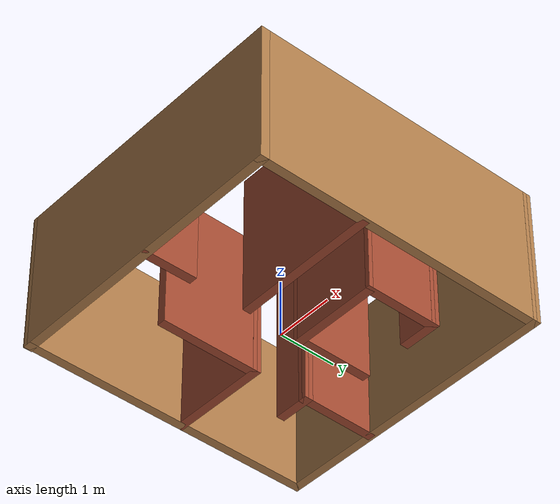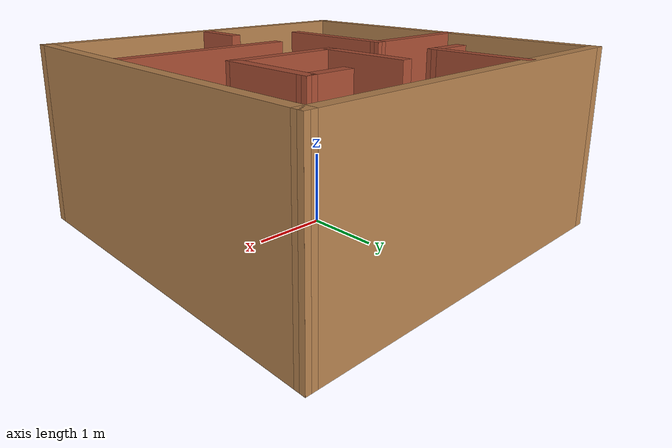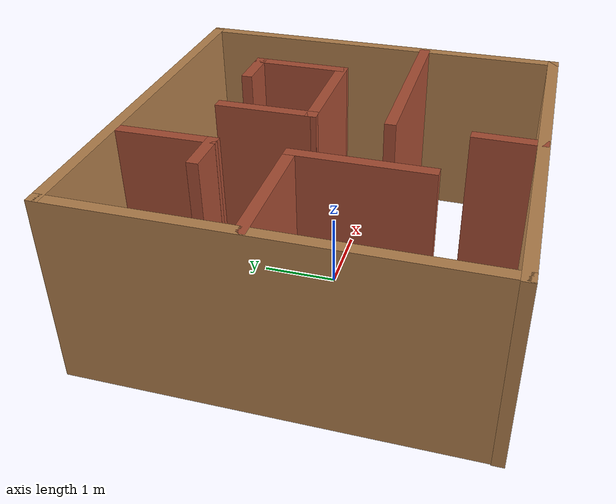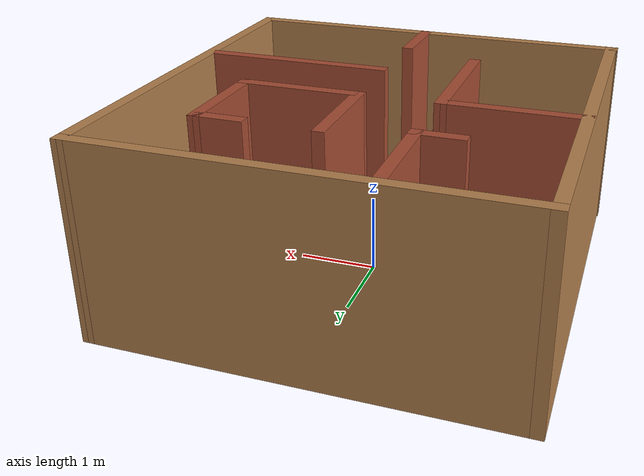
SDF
<?xml version='1.0'?>
<sdf version='1.7'>
  <model name='rooms'>
    <pose>-0.014095 0.011538 0 0 -0 0</pose>
    <link name='Wall_12'>
      <collision name='Wall_12_Collision'>
        <geometry>
          <box>
            <size>1.78304 0.15 2.5</size>
          </box>
        </geometry>
        <pose>0 0 1.25 0 -0 0</pose>
      </collision>
      <visual name='Wall_12_Visual'>
        <pose>0 0 1.25 0 -0 0</pose>
        <geometry>
          <box>
            <size>1.78304 0.15 2.5</size>
          </box>
        </geometry>
        <material>
          <script>
            <uri>file://media/materials/scripts/gazebo.material</uri>
            <name>Gazebo/Bricks</name>
          </script>
          <ambient>1 1 1 1</ambient>
        </material>
        <meta>
          <layer>0</layer>
        </meta>
      </visual>
      <pose>-1.71414 0.251926 0 0 -0 0.007042</pose>
    </link>
    <link name='Wall_13'>
      <collision name='Wall_13_Collision'>
        <geometry>
          <box>
            <size>1.806 0.15 2.5</size>
          </box>
        </geometry>
        <pose>0 0 1.25 0 -0 0</pose>
      </collision>
      <visual name='Wall_13_Visual'>
        <pose>0 0 1.25 0 -0 0</pose>
        <geometry>
          <box>
            <size>1.806 0.15 2.5</size>
          </box>
        </geometry>
        <material>
          <script>
            <uri>file://media/materials/scripts/gazebo.material</uri>
            <name>Gazebo/Bricks</name>
          </script>
          <ambient>1 1 1 1</ambient>
        </material>
        <meta>
          <layer>0</layer>
        </meta>
      </visual>
      <pose>-0.897641 -0.570324 0 0 -0 -1.5708</pose>
    </link>
    <link name='Wall_15'>
      <collision name='Wall_15_Collision'>
        <geometry>
          <box>
            <size>0.919898 0.15 2.5</size>
          </box>
        </geometry>
        <pose>0 0 1.25 0 -0 0</pose>
      </collision>
      <visual name='Wall_15_Visual'>
        <pose>0 0 1.25 0 -0 0</pose>
        <geometry>
          <box>
            <size>0.919898 0.15 2.5</size>
          </box>
        </geometry>
        <material>
          <script>
            <uri>file://media/materials/scripts/gazebo.material</uri>
            <name>Gazebo/Bricks</name>
          </script>
          <ambient>1 1 1 1</ambient>
        </material>
        <meta>
          <layer>0</layer>
        </meta>
      </visual>
      <pose>0.085353 -2.15191 0 0 -0 1.55652</pose>
    </link>
    <link name='Wall_17'>
      <collision name='Wall_17_Collision'>
        <geometry>
          <box>
            <size>2.5 0.15 2.5</size>
          </box>
        </geometry>
        <pose>0 0 1.25 0 -0 0</pose>
      </collision>
      <visual name='Wall_17_Visual'>
        <pose>0 0 1.25 0 -0 0</pose>
        <geometry>
          <box>
            <size>2.5 0.15 2.5</size>
          </box>
        </geometry>
        <material>
          <script>
            <uri>file://media/materials/scripts/gazebo.material</uri>
            <name>Gazebo/Bricks</name>
          </script>
          <ambient>1 1 1 1</ambient>
        </material>
        <meta>
          <layer>0</layer>
        </meta>
      </visual>
      <pose>1.32585 -0.707004 0 0 -0 3.14159</pose>
    </link>
    <link name='Wall_19'>
      <collision name='Wall_19_Collision'>
        <geometry>
          <box>
            <size>1.40355 0.15 2.5</size>
          </box>
        </geometry>
        <pose>0 0 1.25 0 -0 0</pose>
      </collision>
      <visual name='Wall_19_Visual'>
        <pose>0 0 1.25 0 -0 0</pose>
        <geometry>
          <box>
            <size>1.40355 0.15 2.5</size>
          </box>
        </geometry>
        <material>
          <script>
            <uri>file://media/materials/scripts/gazebo.material</uri>
            <name>Gazebo/Bricks</name>
          </script>
          <ambient>1 1 1 1</ambient>
        </material>
        <meta>
          <layer>0</layer>
        </meta>
      </visual>
      <pose>-0.880391 1.87343 0 0 -0 -1.56162</pose>
    </link>
    <link name='Wall_20'>
      <collision name='Wall_20_Collision'>
        <geometry>
          <box>
            <size>0.644634 0.15 2.5</size>
          </box>
        </geometry>
        <pose>0 0 1.25 0 -0 0</pose>
      </collision>
      <visual name='Wall_20_Visual'>
        <pose>0 0 1.25 0 -0 0</pose>
        <geometry>
          <box>
            <size>0.644634 0.15 2.5</size>
          </box>
        </geometry>
        <material>
          <script>
            <uri>file://media/materials/scripts/gazebo.material</uri>
            <name>Gazebo/Bricks</name>
          </script>
          <ambient>1 1 1 1</ambient>
        </material>
        <meta>
          <layer>0</layer>
        </meta>
      </visual>
      <pose>-1.12189 1.24668 0 0 -0 3.14159</pose>
    </link>
    <link name='Wall_22'>
      <collision name='Wall_22_Collision'>
        <geometry>
          <box>
            <size>1.35074 0.15 2.5</size>
          </box>
        </geometry>
        <pose>0 0 1.25 0 -0 0</pose>
      </collision>
      <visual name='Wall_22_Visual'>
        <pose>0 0 1.25 0 -0 0</pose>
        <geometry>
          <box>
            <size>1.35074 0.15 2.5</size>
          </box>
        </geometry>
        <material>
          <script>
            <uri>file://media/materials/scripts/gazebo.material</uri>
            <name>Gazebo/Bricks</name>
          </script>
          <ambient>1 1 1 1</ambient>
        </material>
        <meta>
          <layer>0</layer>
        </meta>
      </visual>
      <pose>0.097537 0.899233 0 0 -0 -1.56603</pose>
    </link>
    <link name='Wall_23'>
      <collision name='Wall_23_Collision'>
        <geometry>
          <box>
            <size>1.60797 0.15 2.5</size>
          </box>
        </geometry>
        <pose>0 0 1.25 0 -0 0</pose>
      </collision>
      <visual name='Wall_23_Visual'>
        <pose>0 0 1.25 0 -0 0</pose>
        <geometry>
          <box>
            <size>1.60797 0.15 2.5</size>
          </box>
        </geometry>
        <material>
          <script>
            <uri>file://media/materials/scripts/gazebo.material</uri>
            <name>Gazebo/Bricks</name>
          </script>
          <ambient>1 1 1 1</ambient>
        </material>
        <meta>
          <layer>0</layer>
        </meta>
      </visual>
      <pose>0.829381 0.298892 0 0 -0 0</pose>
    </link>
    <link name='Wall_24'>
      <collision name='Wall_24_Collision'>
        <geometry>
          <box>
            <size>1.35074 0.15 2.5</size>
          </box>
        </geometry>
        <pose>0 0 1.25 0 -0 0</pose>
      </collision>
      <visual name='Wall_24_Visual'>
        <pose>0 0 1.25 0 -0 0</pose>
        <geometry>
          <box>
            <size>1.35074 0.15 2.5</size>
          </box>
        </geometry>
        <material>
          <script>
            <uri>file://media/materials/scripts/gazebo.material</uri>
            <name>Gazebo/Bricks</name>
          </script>
          <ambient>1 1 1 1</ambient>
        </material>
        <meta>
          <layer>0</layer>
        </meta>
      </visual>
      <pose>1.56123 0.899233 0 0 -0 1.56603</pose>
    </link>
    <link name='Wall_25'>
      <collision name='Wall_25_Collision'>
        <geometry>
          <box>
            <size>0.664578 0.15 2.5</size>
          </box>
        </geometry>
        <pose>0 0 1.25 0 -0 0</pose>
      </collision>
      <visual name='Wall_25_Visual'>
        <pose>0 0 1.25 0 -0 0</pose>
        <geometry>
          <box>
            <size>0.664578 0.15 2.5</size>
          </box>
        </geometry>
        <material>
          <script>
            <uri>file://media/materials/scripts/gazebo.material</uri>
            <name>Gazebo/Bricks</name>
          </script>
          <ambient>1 1 1 1</ambient>
        </material>
        <meta>
          <layer>0</layer>
        </meta>
      </visual>
      <pose>1.30679 1.49957 0 0 -0 3.14159</pose>
    </link>
    <link name='Wall_6'>
      <collision name='Wall_6_Collision'>
        <geometry>
          <box>
            <size>5.24874 0.15 2.5</size>
          </box>
        </geometry>
        <pose>0 0 1.25 0 -0 0</pose>
      </collision>
      <visual name='Wall_6_Visual'>
        <pose>0 0 1.25 0 -0 0</pose>
        <geometry>
          <box>
            <size>5.24874 0.15 2.5</size>
          </box>
        </geometry>
        <material>
          <script>
            <uri>file://media/materials/scripts/gazebo.material</uri>
            <name>Gazebo/Wood</name>
          </script>
          <ambient>1 1 1 1</ambient>
        </material>
        <meta>
          <layer>0</layer>
        </meta>
      </visual>
      <pose>0.00055 2.54402 0 0 -0 0.002344</pose>
    </link>
    <link name='Wall_7'>
      <collision name='Wall_7_Collision'>
        <geometry>
          <box>
            <size>5.25 0.15 2.5</size>
          </box>
        </geometry>
        <pose>0 0 1.25 0 -0 0</pose>
      </collision>
      <visual name='Wall_7_Visual'>
        <pose>0 0 1.25 0 -0 0</pose>
        <geometry>
          <box>
            <size>5.25 0.15 2.5</size>
          </box>
        </geometry>
        <material>
          <script>
            <uri>file://media/materials/scripts/gazebo.material</uri>
            <name>Gazebo/Wood</name>
          </script>
          <ambient>1 1 1 1</ambient>
        </material>
        <meta>
          <layer>0</layer>
        </meta>
      </visual>
      <pose>2.54991 0 0 0 -0 -1.5708</pose>
    </link>
    <link name='Wall_8'>
      <collision name='Wall_8_Collision'>
        <geometry>
          <box>
            <size>5.25 0.15 2.5</size>
          </box>
        </geometry>
        <pose>0 0 1.25 0 -0 0</pose>
      </collision>
      <visual name='Wall_8_Visual'>
        <pose>0 0 1.25 0 -0 0</pose>
        <geometry>
          <box>
            <size>5.25 0.15 2.5</size>
          </box>
        </geometry>
        <material>
          <script>
            <uri>file://media/materials/scripts/gazebo.material</uri>
            <name>Gazebo/Wood</name>
          </script>
          <ambient>1 1 1 1</ambient>
        </material>
        <meta>
          <layer>0</layer>
        </meta>
      </visual>
      <pose>-8.8e-05 -2.55 0 0 -0 3.14159</pose>
    </link>
    <link name='Wall_9'>
      <collision name='Wall_9_Collision'>
        <geometry>
          <box>
            <size>5.23806 0.15 2.5</size>
          </box>
        </geometry>
        <pose>0 0 1.25 0 -0 0</pose>
      </collision>
      <visual name='Wall_9_Visual'>
        <pose>0 0 1.25 0 -0 0</pose>
        <geometry>
          <box>
            <size>5.23806 0.15 2.5</size>
          </box>
        </geometry>
        <material>
          <script>
            <uri>file://media/materials/scripts/gazebo.material</uri>
            <name>Gazebo/Wood</name>
          </script>
          <ambient>1 1 1 1</ambient>
        </material>
        <meta>
          <layer>0</layer>
        </meta>
      </visual>
      <pose>-2.54284 -0.005975 0 0 -0 1.57315</pose>
    </link>
    <static>1</static>
  </model>
</sdf>
